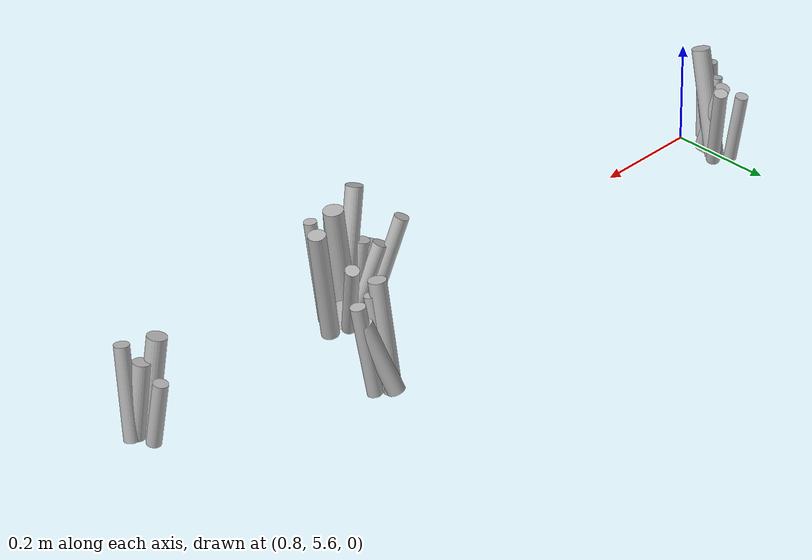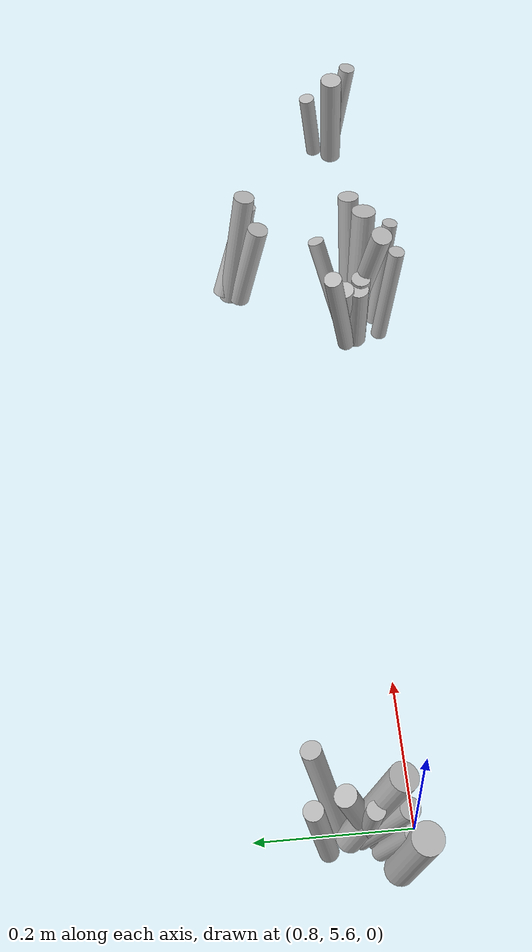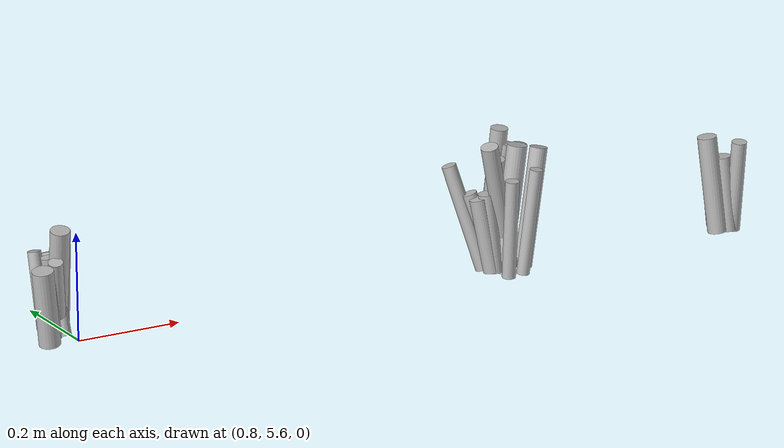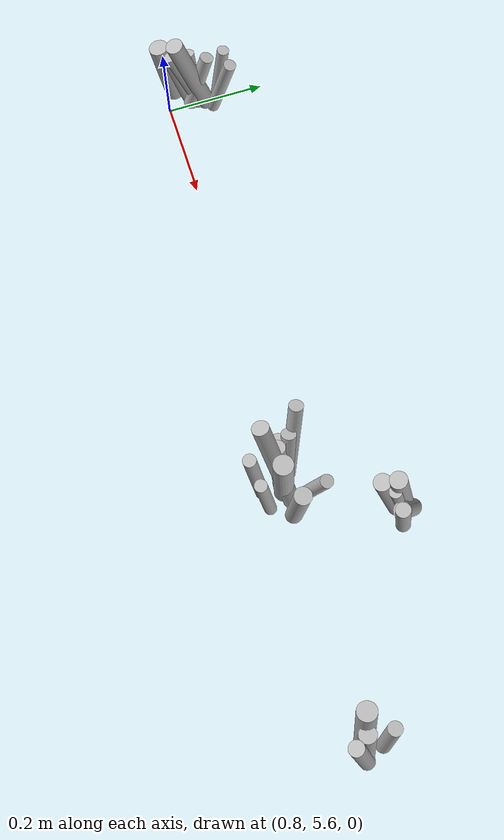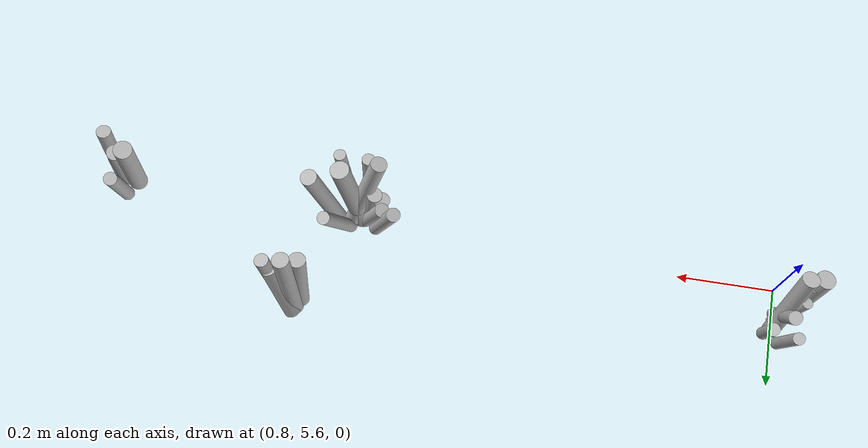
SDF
<sdf version="1.6">
 <world name="default">
  <model name="tussocks">
   <static>true</static>
   <link name="tuft6_0">
    <pose>2.1760 5.6050 0.0601 0 0.1301 2.0130</pose>
    <visual name="tuft6_0_v">
     <geometry><cylinder><radius>0.0142</radius><length>0.1307</length></cylinder></geometry>
     <material>
      <script>
       <uri>model://bushfire/materials/scripts</uri>
       <uri>model://bushfire/materials/textures</uri>
       <name>Bushfire/Foliage2</name>
      </script>
     </material>
    </visual>
   </link>
   <link name="tuft6_2">
    <pose>2.1514 5.5676 0.0899 0 0.1418 2.9737</pose>
    <visual name="tuft6_2_v">
     <geometry><cylinder><radius>0.0190</radius><length>0.1955</length></cylinder></geometry>
     <material>
      <script>
       <uri>model://bushfire/materials/scripts</uri>
       <uri>model://bushfire/materials/textures</uri>
       <name>Bushfire/Tussock</name>
      </script>
     </material>
    </visual>
   </link>
   <link name="tuft6_3">
    <pose>2.1786 5.5618 0.0695 0 0.1184 3.0356</pose>
    <visual name="tuft6_3_v">
     <geometry><cylinder><radius>0.0168</radius><length>0.1512</length></cylinder></geometry>
     <material>
      <script>
       <uri>model://bushfire/materials/scripts</uri>
       <uri>model://bushfire/materials/textures</uri>
       <name>Bushfire/Foliage2</name>
      </script>
     </material>
    </visual>
   </link>
   <link name="tuft6_8">
    <pose>2.1934 5.5475 0.0855 0 0.1524 4.3991</pose>
    <visual name="tuft6_8_v">
     <geometry><cylinder><radius>0.0148</radius><length>0.1859</length></cylinder></geometry>
     <material>
      <script>
       <uri>model://bushfire/materials/scripts</uri>
       <uri>model://bushfire/materials/textures</uri>
       <name>Bushfire/Tussock</name>
      </script>
     </material>
    </visual>
   </link>
   <link name="tuft7_0">
    <pose>0.7814 5.6434 0.0722 0 0.3536 4.1997</pose>
    <visual name="tuft7_0_v">
     <geometry><cylinder><radius>0.0133</radius><length>0.1571</length></cylinder></geometry>
     <material>
      <script>
       <uri>model://bushfire/materials/scripts</uri>
       <uri>model://bushfire/materials/textures</uri>
       <name>Bushfire/Tussock</name>
      </script>
     </material>
    </visual>
   </link>
   <link name="tuft7_1">
    <pose>0.7643 5.6310 0.0574 0 0.3162 3.9882</pose>
    <visual name="tuft7_1_v">
     <geometry><cylinder><radius>0.0113</radius><length>0.1247</length></cylinder></geometry>
     <material>
      <script>
       <uri>model://bushfire/materials/scripts</uri>
       <uri>model://bushfire/materials/textures</uri>
       <name>Bushfire/Tussock</name>
      </script>
     </material>
    </visual>
   </link>
   <link name="tuft7_2">
    <pose>0.7900 5.6549 0.0977 0 0.2648 4.4345</pose>
    <visual name="tuft7_2_v">
     <geometry><cylinder><radius>0.0178</radius><length>0.2123</length></cylinder></geometry>
     <material>
      <script>
       <uri>model://bushfire/materials/scripts</uri>
       <uri>model://bushfire/materials/textures</uri>
       <name>Bushfire/Tussock</name>
      </script>
     </material>
    </visual>
   </link>
   <link name="tuft7_3">
    <pose>0.7837 5.6611 0.0698 0 0.1882 3.3295</pose>
    <visual name="tuft7_3_v">
     <geometry><cylinder><radius>0.0114</radius><length>0.1518</length></cylinder></geometry>
     <material>
      <script>
       <uri>model://bushfire/materials/scripts</uri>
       <uri>model://bushfire/materials/textures</uri>
       <name>Bushfire/Tussock</name>
      </script>
     </material>
    </visual>
   </link>
   <link name="tuft7_4">
    <pose>0.8247 5.7089 0.0812 0 0.2483 0.9577</pose>
    <visual name="tuft7_4_v">
     <geometry><cylinder><radius>0.0129</radius><length>0.1766</length></cylinder></geometry>
     <material>
      <script>
       <uri>model://bushfire/materials/scripts</uri>
       <uri>model://bushfire/materials/textures</uri>
       <name>Bushfire/Foliage2</name>
      </script>
     </material>
    </visual>
   </link>
   <link name="tuft7_5">
    <pose>0.7809 5.7184 0.0654 0 0.1504 1.7711</pose>
    <visual name="tuft7_5_v">
     <geometry><cylinder><radius>0.0124</radius><length>0.1423</length></cylinder></geometry>
     <material>
      <script>
       <uri>model://bushfire/materials/scripts</uri>
       <uri>model://bushfire/materials/textures</uri>
       <name>Bushfire/Tussock</name>
      </script>
     </material>
    </visual>
   </link>
   <link name="tuft7_6">
    <pose>0.7918 5.6690 0.0701 0 0.2934 1.6430</pose>
    <visual name="tuft7_6_v">
     <geometry><cylinder><radius>0.0141</radius><length>0.1523</length></cylinder></geometry>
     <material>
      <script>
       <uri>model://bushfire/materials/scripts</uri>
       <uri>model://bushfire/materials/textures</uri>
       <name>Bushfire/Tussock</name>
      </script>
     </material>
    </visual>
   </link>
   <link name="tuft7_7">
    <pose>0.7449 5.6143 0.0677 0 0.1942 3.9376</pose>
    <visual name="tuft7_7_v">
     <geometry><cylinder><radius>0.0198</radius><length>0.1472</length></cylinder></geometry>
     <material>
      <script>
       <uri>model://bushfire/materials/scripts</uri>
       <uri>model://bushfire/materials/textures</uri>
       <name>Bushfire/Tussock</name>
      </script>
     </material>
    </visual>
   </link>
   <link name="tuft86_0">
    <pose>1.6350 5.5760 0.0683 0 0.2064 3.0409</pose>
    <visual name="tuft86_0_v">
     <geometry><cylinder><radius>0.0165</radius><length>0.1486</length></cylinder></geometry>
     <material>
      <script>
       <uri>model://bushfire/materials/scripts</uri>
       <uri>model://bushfire/materials/textures</uri>
       <name>Bushfire/Tussock</name>
      </script>
     </material>
    </visual>
   </link>
   <link name="tuft86_1">
    <pose>1.7089 5.6161 0.0767 0 0.3268 0.9194</pose>
    <visual name="tuft86_1_v">
     <geometry><cylinder><radius>0.0135</radius><length>0.1668</length></cylinder></geometry>
     <material>
      <script>
       <uri>model://bushfire/materials/scripts</uri>
       <uri>model://bushfire/materials/textures</uri>
       <name>Bushfire/Foliage2</name>
      </script>
     </material>
    </visual>
   </link>
   <link name="tuft86_2">
    <pose>1.6456 5.5722 0.0720 0 0.1383 3.1325</pose>
    <visual name="tuft86_2_v">
     <geometry><cylinder><radius>0.0156</radius><length>0.1565</length></cylinder></geometry>
     <material>
      <script>
       <uri>model://bushfire/materials/scripts</uri>
       <uri>model://bushfire/materials/textures</uri>
       <name>Bushfire/Foliage2</name>
      </script>
     </material>
    </visual>
   </link>
   <link name="tuft86_3">
    <pose>1.7394 5.5793 0.1061 0 0.1534 0.1140</pose>
    <visual name="tuft86_3_v">
     <geometry><cylinder><radius>0.0169</radius><length>0.2307</length></cylinder></geometry>
     <material>
      <script>
       <uri>model://bushfire/materials/scripts</uri>
       <uri>model://bushfire/materials/textures</uri>
       <name>Bushfire/Foliage2</name>
      </script>
     </material>
    </visual>
   </link>
   <link name="tuft86_4">
    <pose>1.7034 5.5282 0.0956 0 0.1192 5.2845</pose>
    <visual name="tuft86_4_v">
     <geometry><cylinder><radius>0.0123</radius><length>0.2078</length></cylinder></geometry>
     <material>
      <script>
       <uri>model://bushfire/materials/scripts</uri>
       <uri>model://bushfire/materials/textures</uri>
       <name>Bushfire/Foliage2</name>
      </script>
     </material>
    </visual>
   </link>
   <link name="tuft86_5">
    <pose>1.6589 5.5633 0.1219 0 0.3063 3.6271</pose>
    <visual name="tuft86_5_v">
     <geometry><cylinder><radius>0.0166</radius><length>0.2650</length></cylinder></geometry>
     <material>
      <script>
       <uri>model://bushfire/materials/scripts</uri>
       <uri>model://bushfire/materials/textures</uri>
       <name>Bushfire/Foliage2</name>
      </script>
     </material>
    </visual>
   </link>
   <link name="tuft86_6">
    <pose>1.6846 5.5685 0.1141 0 0.1111 5.9268</pose>
    <visual name="tuft86_6_v">
     <geometry><cylinder><radius>0.0191</radius><length>0.2481</length></cylinder></geometry>
     <material>
      <script>
       <uri>model://bushfire/materials/scripts</uri>
       <uri>model://bushfire/materials/textures</uri>
       <name>Bushfire/Tussock</name>
      </script>
     </material>
    </visual>
   </link>
   <link name="tuft86_7">
    <pose>1.6130 5.6079 0.0976 0 0.3106 2.6177</pose>
    <visual name="tuft86_7_v">
     <geometry><cylinder><radius>0.0141</radius><length>0.2122</length></cylinder></geometry>
     <material>
      <script>
       <uri>model://bushfire/materials/scripts</uri>
       <uri>model://bushfire/materials/textures</uri>
       <name>Bushfire/Tussock</name>
      </script>
     </material>
    </visual>
   </link>
   <link name="tuft86_8">
    <pose>1.6397 5.5888 0.0722 0 0.3533 2.6995</pose>
    <visual name="tuft86_8_v">
     <geometry><cylinder><radius>0.0147</radius><length>0.1571</length></cylinder></geometry>
     <material>
      <script>
       <uri>model://bushfire/materials/scripts</uri>
       <uri>model://bushfire/materials/textures</uri>
       <name>Bushfire/Foliage2</name>
      </script>
     </material>
    </visual>
   </link>
   <link name="tuft86_9">
    <pose>1.6582 5.5234 0.0892 0 0.1075 4.3757</pose>
    <visual name="tuft86_9_v">
     <geometry><cylinder><radius>0.0131</radius><length>0.1939</length></cylinder></geometry>
     <material>
      <script>
       <uri>model://bushfire/materials/scripts</uri>
       <uri>model://bushfire/materials/textures</uri>
       <name>Bushfire/Tussock</name>
      </script>
     </material>
    </visual>
   </link>
   <link name="tuft159_0">
    <pose>1.7627 5.7496 0.0773 0 0.2288 4.4898</pose>
    <visual name="tuft159_0_v">
     <geometry><cylinder><radius>0.0174</radius><length>0.1681</length></cylinder></geometry>
     <material>
      <script>
       <uri>model://bushfire/materials/scripts</uri>
       <uri>model://bushfire/materials/textures</uri>
       <name>Bushfire/Foliage2</name>
      </script>
     </material>
    </visual>
   </link>
   <link name="tuft159_4">
    <pose>1.7844 5.7625 0.0886 0 0.2007 4.9641</pose>
    <visual name="tuft159_4_v">
     <geometry><cylinder><radius>0.0122</radius><length>0.1927</length></cylinder></geometry>
     <material>
      <script>
       <uri>model://bushfire/materials/scripts</uri>
       <uri>model://bushfire/materials/textures</uri>
       <name>Bushfire/Tussock</name>
      </script>
     </material>
    </visual>
   </link>
   <link name="tuft159_6">
    <pose>1.7963 5.7740 0.0688 0 0.3931 5.3855</pose>
    <visual name="tuft159_6_v">
     <geometry><cylinder><radius>0.0171</radius><length>0.1495</length></cylinder></geometry>
     <material>
      <script>
       <uri>model://bushfire/materials/scripts</uri>
       <uri>model://bushfire/materials/textures</uri>
       <name>Bushfire/Foliage2</name>
      </script>
     </material>
    </visual>
   </link>
   <link name="tuft159_7">
    <pose>1.7770 5.7680 0.1027 0 0.1549 4.7915</pose>
    <visual name="tuft159_7_v">
     <geometry><cylinder><radius>0.0170</radius><length>0.2232</length></cylinder></geometry>
     <material>
      <script>
       <uri>model://bushfire/materials/scripts</uri>
       <uri>model://bushfire/materials/textures</uri>
       <name>Bushfire/Tussock</name>
      </script>
     </material>
    </visual>
   </link>
   <link name="tuft159_10">
    <pose>1.8133 5.7576 0.0848 0 0.1590 5.4382</pose>
    <visual name="tuft159_10_v">
     <geometry><cylinder><radius>0.0145</radius><length>0.1844</length></cylinder></geometry>
     <material>
      <script>
       <uri>model://bushfire/materials/scripts</uri>
       <uri>model://bushfire/materials/textures</uri>
       <name>Bushfire/Foliage2</name>
      </script>
     </material>
    </visual>
   </link>
  </model>
 </world>
</sdf>
